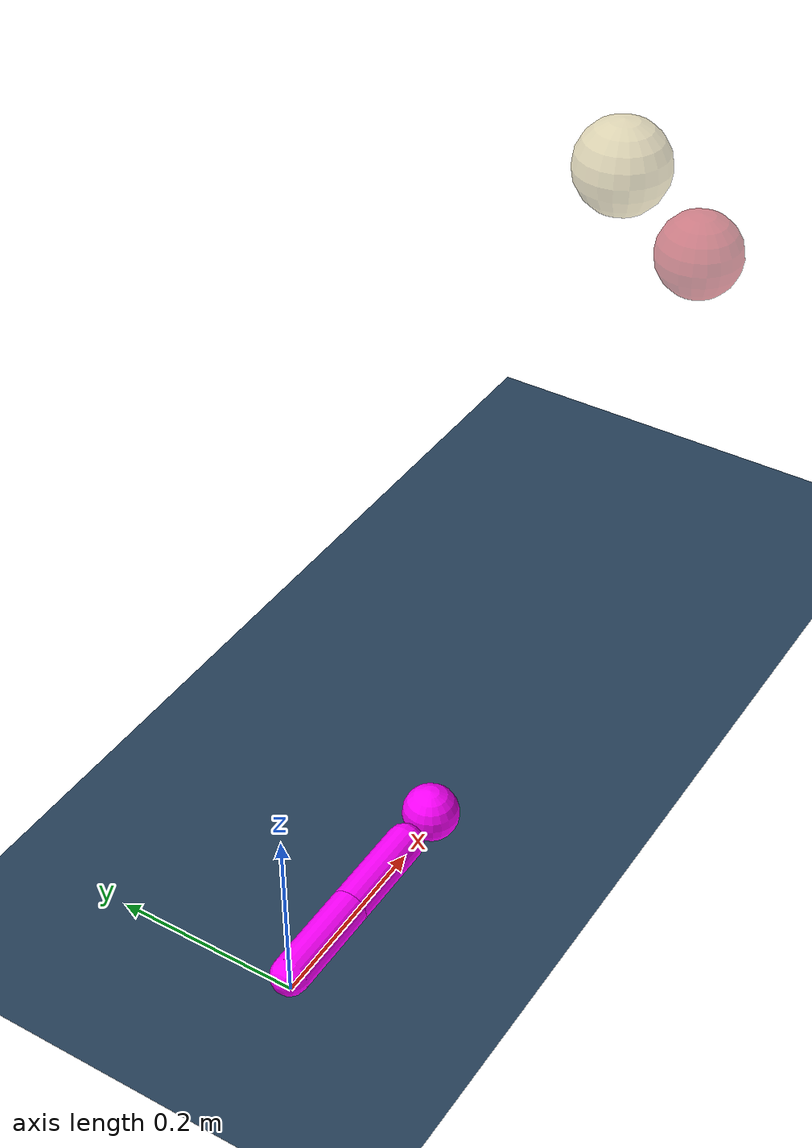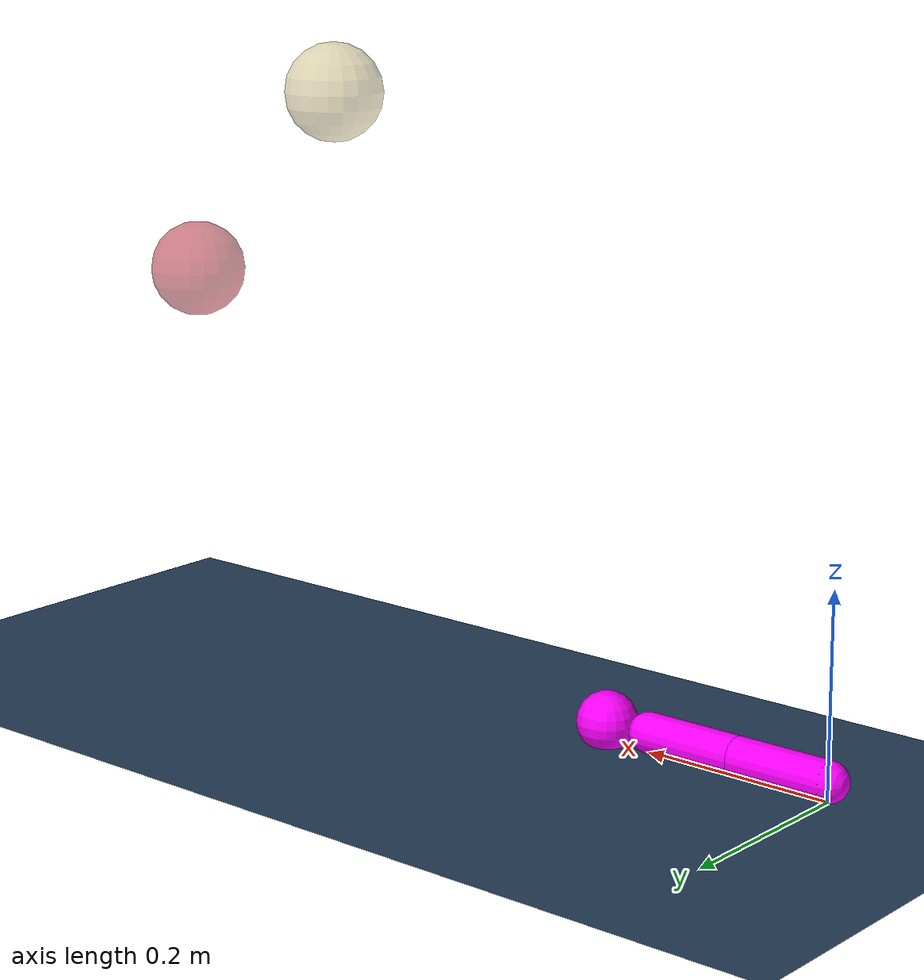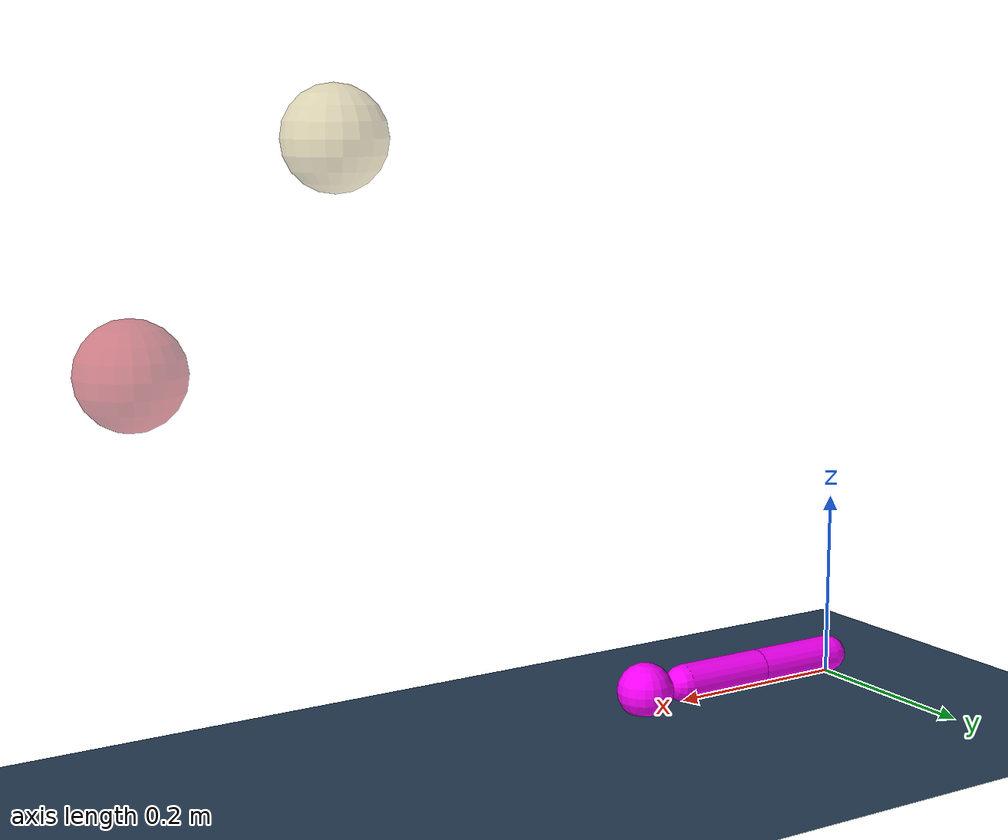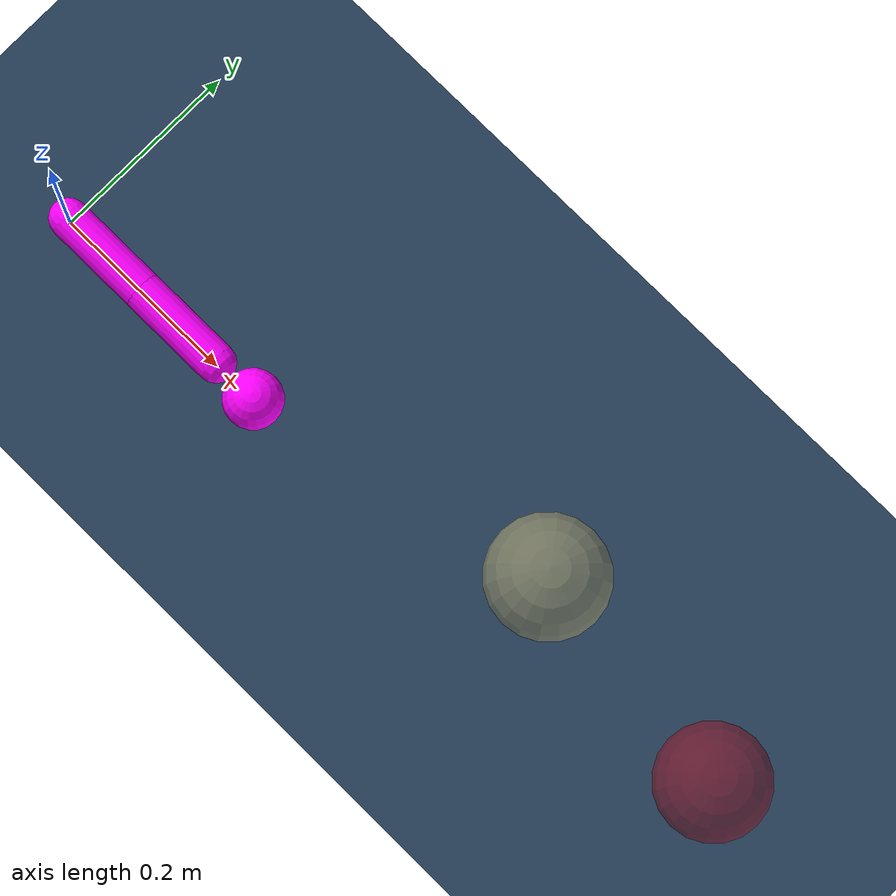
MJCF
<mujoco>
  <option integrator="RK4"/>

  <asset>
    <texture name="grid" type="2d" builtin="checker" rgb1="0.1 0.2 0.3"
     rgb2="0.2 0.3 0.4" width="1000" height="1000" />
    <material name="grid" texture="grid" texrepeat="8 8" reflectance="0.2" />
  </asset>

  <worldbody>
    <geom name="plane_geom" size="1.5 1.5 0.01" type="plane" material="grid" />
    <light cutoff="100" diffuse="1 1 1" dir="-0 0 -1.3" directional="true" exponent="1" pos="0 0 1.3" specular=".1 .1 .1"/>
    <body name="upper_arm" pos="0 0 0.02">
      <joint name="shoulder" type="hinge" axis="0 -1 0" limited="true" range="0 180" />
      <geom name="upper_arm_geom" type="capsule" size=".02" fromto="0 0 0 0.10 0 0" rgba="1 0 1 1" />

      <!--child for forearm and fist-->
      <body name="forearm" pos="0.10 0 0">
        <joint name="elbow" type="hinge" axis="0 -1 0" limited="true" range="-135 135" ref="0" />
        <geom name="forearm_geom" type="capsule" size=".02" fromto="0 0 0 0.10 0 0" rgba="1 0 1 1" />
        <geom name="fist_geom" type="sphere" size=".03" pos="0.15 0 0" rgba="1 0 1 1" />
      </body>
    </body>

    <body name="ball" pos="0.25 0 0.02" >
      <freejoint />
      <geom name="ball_geom" type="sphere" size="0.02" rgba="0 1 1 1" />
    </body>

    <body name="target" pos="0.8 0 0.4">
      <geom name="target_geom" type="sphere" size="0.05" rgba="0.67 0.04 0.11 0.5" mass="0" contype="0" conaffinity="0" />
    </body>

    <body name="launch_point" pos="0.6 0 0.6">
      <geom name="launch_point_geom" type="sphere" size="0.05" rgba="0.8 0.73 0.47 0.5" mass="0" contype="0" conaffinity="0" />
    </body>
  </worldbody>

  <actuator>
    <motor name="shoulder_motor" joint="shoulder" gear="1" ctrllimited="true" ctrlrange="-1.5 1.5" />
  </actuator>

  <actuator>
    <motor name="elbow_motor" joint="elbow" gear="1" ctrllimited="true" ctrlrange="-1.5 1.5" />
  </actuator>

  <equality>
    <weld name="ball_in_hand" body1="forearm" body2="ball" relpose="0.15 0 0 -1 0 0 0" solimp="0.95 1 0.001 0.1 6"
          solref="0.005 1" />

    <weld name="ball_in_target" body1="target" body2="ball" relpose="0 0 0 -1 0 0 0" solimp="0.95 1 0.001 0.1 6"
          solref="0.005 1" active="false"/>
  </equality>
</mujoco>
